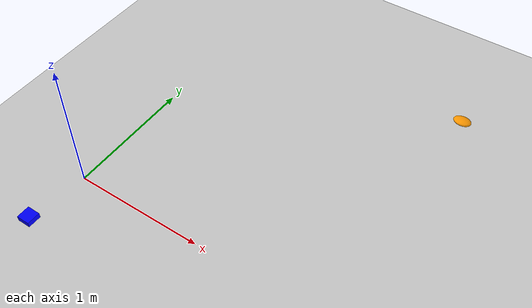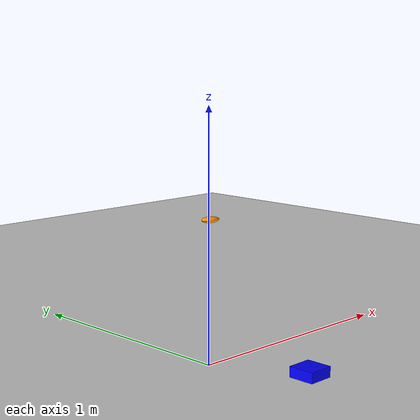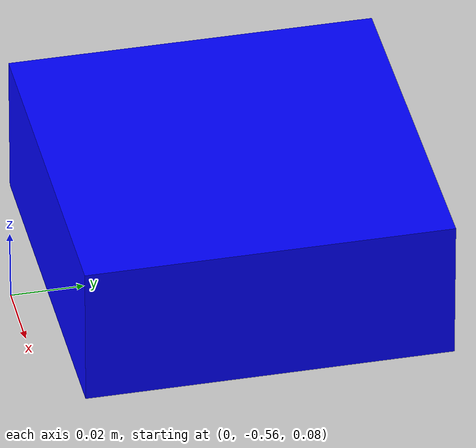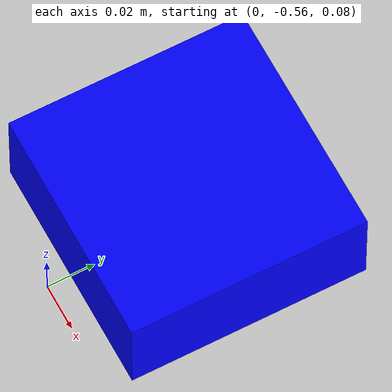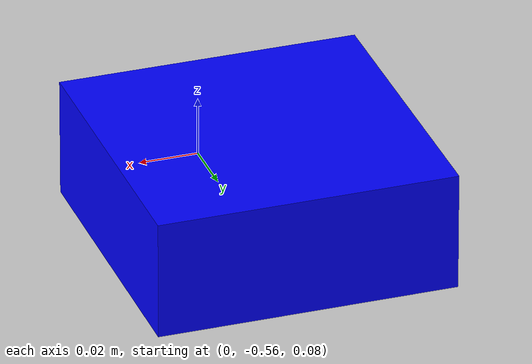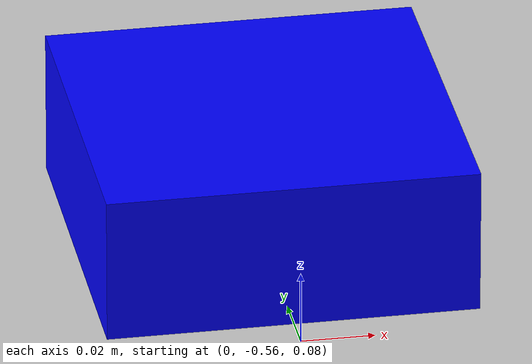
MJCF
<mujoco model="tracking_simulation">
    <compiler coordinate="local"/>
    <option timestep="0.01"/>

    <worldbody>
        <!-- Piano di riferimento -->
        <geom name="ground" type="plane" size="5 5 0.1" rgba="0.8 0.8 0.8 1"/>

        <!-- Agente mobile (quadrato) -->
        <body name="agent" pos="0 -0.5 0.1">
            <joint name="agent_x" type="slide" axis="1 0 0" damping="1.0"/>
            <joint name="agent_y" type="slide" axis="0 1 0" damping="1.0"/>
            <joint name="agent_rot" type="hinge" axis="0 0 1" damping="0.0" frictionloss="0.0"/>
            <geom name="agent_geom" type="box" size="0.05 0.05 0.02" rgba="0 0 1 1" contype="0" conaffinity="0"/>
        </body>

        <!-- Target (ellissoide mobile) -->
        <body name="target" pos="2 2 0.05">
            <joint name="target_x" type="slide" axis="1 0 0" damping="1.0"/>
            <joint name="target_y" type="slide" axis="0 1 0" damping="1.0"/>
            <joint name="target_rot" type="hinge" axis="0 0 1" damping="0.0" frictionloss="0.0"/>
            <geom name="target_geom" type="ellipsoid" size="0.07 0.05 0.02" rgba="1 0.6 0 1" contype="0" conaffinity="0"/>
        </body>
    </worldbody>

    <actuator>
        <!-- Motori per l'agente -->
        <motor joint="agent_x" ctrllimited="true" ctrlrange="-10 10"/>
        <motor joint="agent_y" ctrllimited="true" ctrlrange="-10 10"/>
        <motor joint="agent_rot" ctrllimited="true" ctrlrange="-10 10"/>

        <!-- Motori per il target -->
        <motor joint="target_x" ctrllimited="true" ctrlrange="-10 10"/>
        <motor joint="target_y" ctrllimited="true" ctrlrange="-10 10"/>
        <motor joint="target_rot" ctrllimited="true" ctrlrange="-10 10"/>
    </actuator>
</mujoco>
